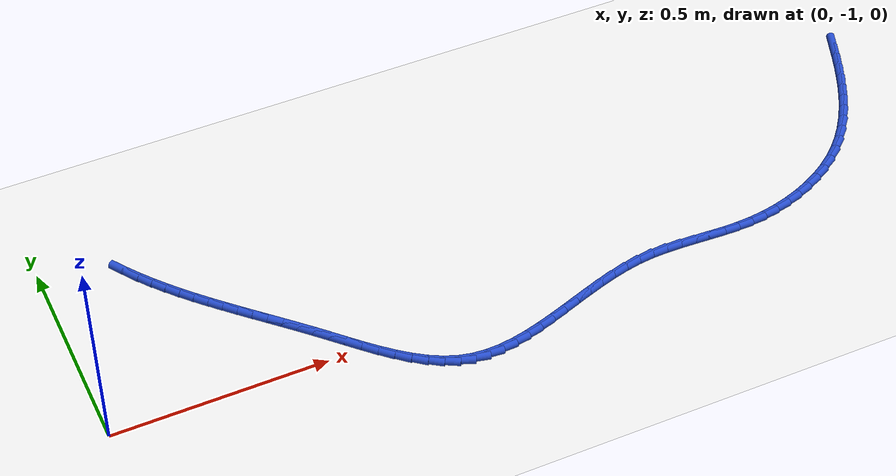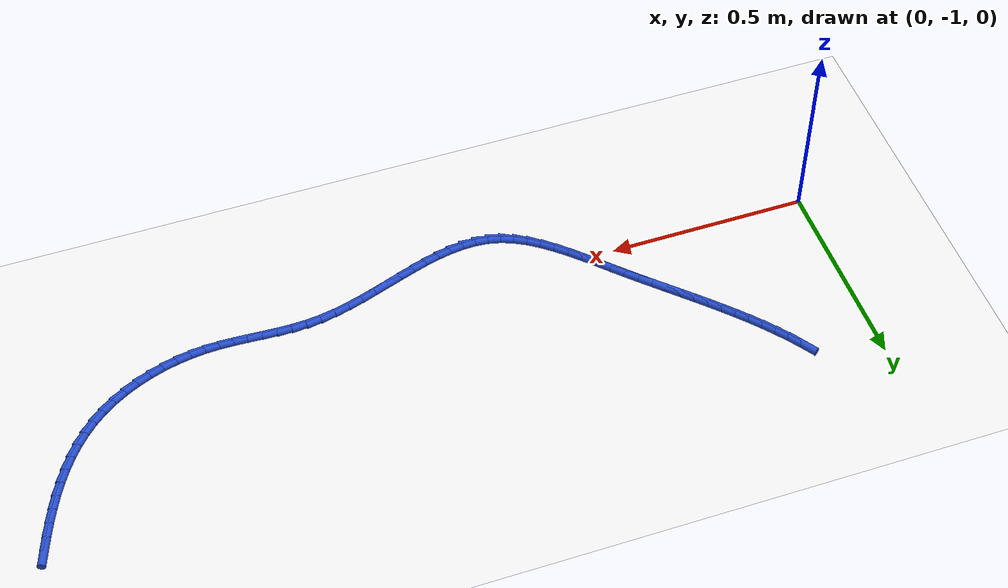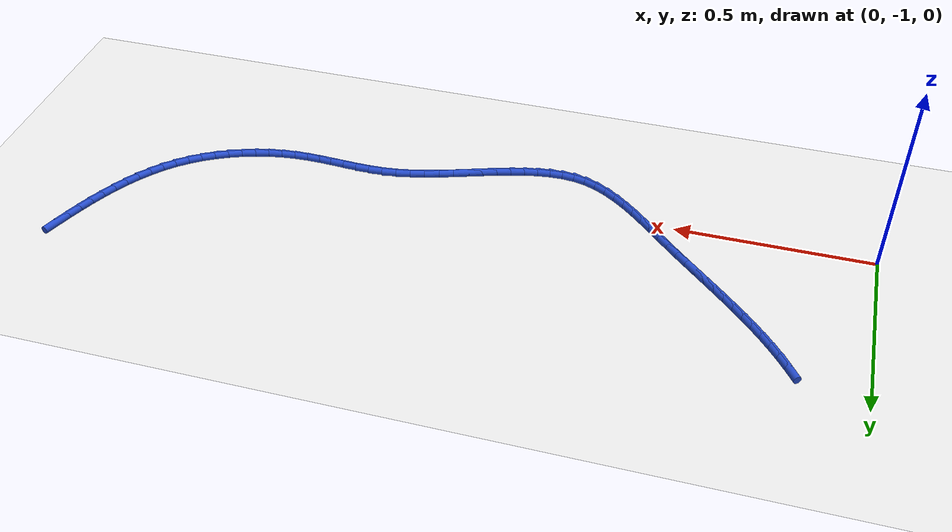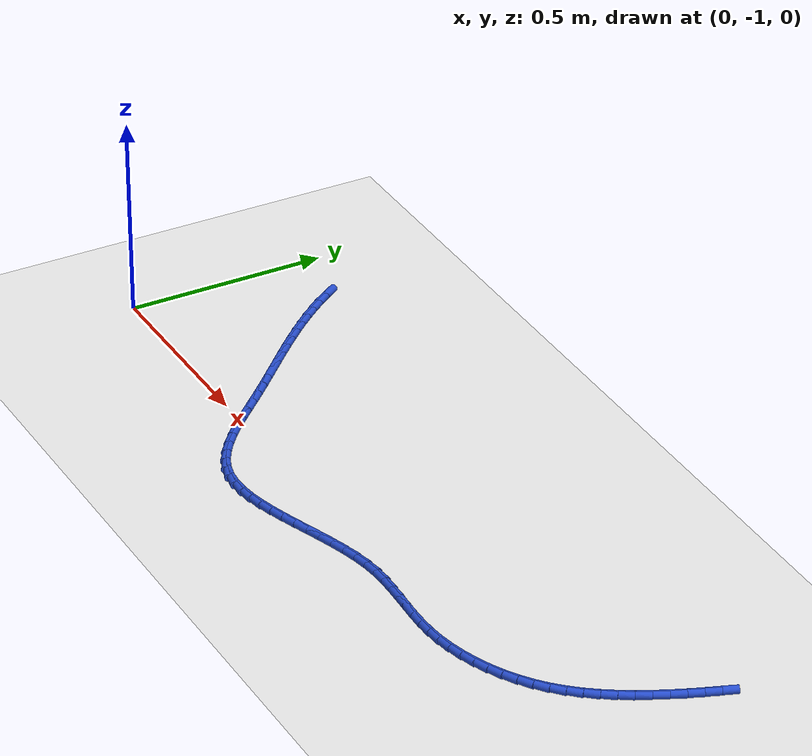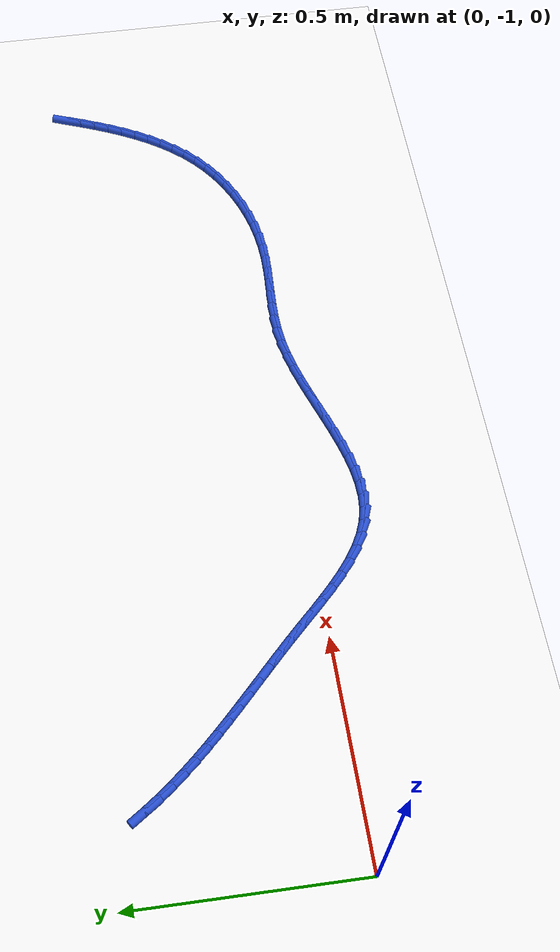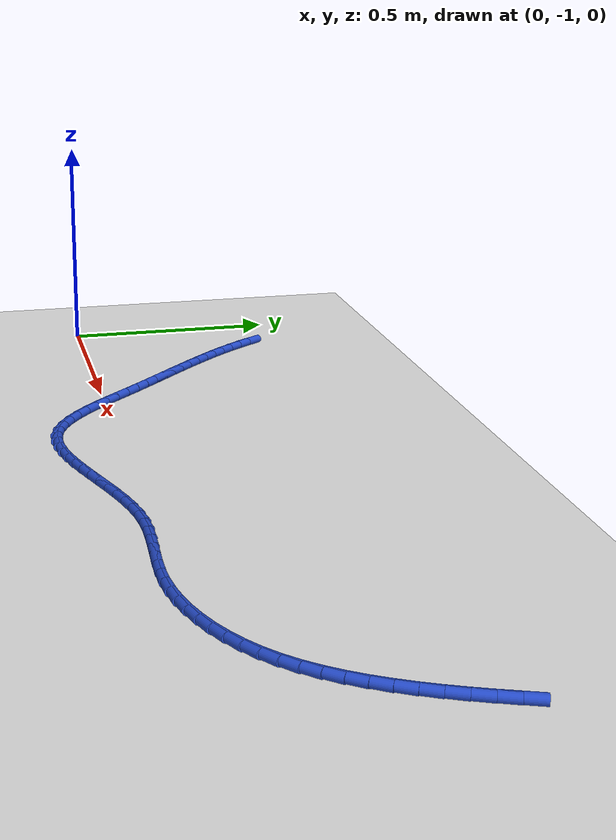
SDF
<sdf version="1.6">
 <world name="default">
  <model name="ground_plane">
   <static>1</static>
   <link name="link">
    <collision name="collision">
     <geometry><plane><normal>0 0 1</normal><size>100 100</size></plane></geometry>
     <surface><friction><ode><mu>100</mu><mu2>50</mu2></ode></friction></surface>
    </collision>
    <visual name="visual">
     <cast_shadows>0</cast_shadows>
     <geometry><plane><normal>0 0 1</normal><size>100 100</size></plane></geometry>
     <material>
      <script><uri>file://media/materials/scripts/gazebo.material</uri><name>Gazebo/WhiteGlow</name></script>
     </material>
    </visual>
   </link>
  </model>
  <model name="line">
   <link name="link_110">
    <pose>2.008956228428397 -0.5895263642792599 0.01 0 1.57 1.2124512911762035</pose>
    <collision name="collision">
     <geometry><cylinder><radius>0.01</radius><length>0.08</length></cylinder></geometry>
    </collision>
    <visual name="visual">
     <material>
      <script><name>Gazebo/Blue</name><uri>file://media/materials/scripts/gazebo.material</uri></script>
     </material>
     <geometry><cylinder><radius>0.01</radius><length>0.08</length></cylinder></geometry>
    </visual>
   </link>
   <link name="link_111">
    <pose>1.995990981477229 -0.6241451678431958 0.01 0 1.57 1.1910156846090714</pose>
    <collision name="collision">
     <geometry><cylinder><radius>0.01</radius><length>0.08</length></cylinder></geometry>
    </collision>
    <visual name="visual">
     <material>
      <script><name>Gazebo/Blue</name><uri>file://media/materials/scripts/gazebo.material</uri></script>
     </material>
     <geometry><cylinder><radius>0.01</radius><length>0.08</length></cylinder></geometry>
    </visual>
   </link>
   <link name="link_112">
    <pose>1.9822794995778001 -0.6584961477705011 0.01 0 1.57 1.163613915062704</pose>
    <collision name="collision">
     <geometry><cylinder><radius>0.01</radius><length>0.08</length></cylinder></geometry>
    </collision>
    <visual name="visual">
     <material>
      <script><name>Gazebo/Blue</name><uri>file://media/materials/scripts/gazebo.material</uri></script>
     </material>
     <geometry><cylinder><radius>0.01</radius><length>0.08</length></cylinder></geometry>
    </visual>
   </link>
   <link name="link_113">
    <pose>1.9676663170922986 -0.6923790030292803 0.01 0 1.57 1.1299675361653945</pose>
    <collision name="collision">
     <geometry><cylinder><radius>0.01</radius><length>0.08</length></cylinder></geometry>
    </collision>
    <visual name="visual">
     <material>
      <script><name>Gazebo/Blue</name><uri>file://media/materials/scripts/gazebo.material</uri></script>
     </material>
     <geometry><cylinder><radius>0.01</radius><length>0.08</length></cylinder></geometry>
    </visual>
   </link>
   <link name="link_114">
    <pose>1.951995968382915 -0.7255934325876364 0.01 0 1.57 1.0897398851819553</pose>
    <collision name="collision">
     <geometry><cylinder><radius>0.01</radius><length>0.08</length></cylinder></geometry>
    </collision>
    <visual name="visual">
     <material>
      <script><name>Gazebo/Blue</name><uri>file://media/materials/scripts/gazebo.material</uri></script>
     </material>
     <geometry><cylinder><radius>0.01</radius><length>0.08</length></cylinder></geometry>
    </visual>
   </link>
   <link name="link_115">
    <pose>1.9351129878118374 -0.7579391354136725 0.01 0 1.57 1.0425703880089827</pose>
    <collision name="collision">
     <geometry><cylinder><radius>0.01</radius><length>0.08</length></cylinder></geometry>
    </collision>
    <visual name="visual">
     <material>
      <script><name>Gazebo/Blue</name><uri>file://media/materials/scripts/gazebo.material</uri></script>
     </material>
     <geometry><cylinder><radius>0.01</radius><length>0.08</length></cylinder></geometry>
    </visual>
   </link>
   <link name="link_116">
    <pose>1.9168619097412556 -0.7892158104754918 0.01 0 1.57 0.988124859467328</pose>
    <collision name="collision">
     <geometry><cylinder><radius>0.01</radius><length>0.08</length></cylinder></geometry>
    </collision>
    <visual name="visual">
     <material>
      <script><name>Gazebo/Blue</name><uri>file://media/materials/scripts/gazebo.material</uri></script>
     </material>
     <geometry><cylinder><radius>0.01</radius><length>0.08</length></cylinder></geometry>
    </visual>
   </link>
   <link name="link_117">
    <pose>1.8970872685333586 -0.8192231567411978 0.01 0 1.57 0.9261662705150793</pose>
    <collision name="collision">
     <geometry><cylinder><radius>0.01</radius><length>0.08</length></cylinder></geometry>
    </collision>
    <visual name="visual">
     <material>
      <script><name>Gazebo/Blue</name><uri>file://media/materials/scripts/gazebo.material</uri></script>
     </material>
     <geometry><cylinder><radius>0.01</radius><length>0.08</length></cylinder></geometry>
    </visual>
   </link>
   <link name="link_118">
    <pose>1.8756335985503356 -0.8477608731788931 0.01 0 1.57 0.8566471759363876</pose>
    <collision name="collision">
     <geometry><cylinder><radius>0.01</radius><length>0.08</length></cylinder></geometry>
    </collision>
    <visual name="visual">
     <material>
      <script><name>Gazebo/Blue</name><uri>file://media/materials/scripts/gazebo.material</uri></script>
     </material>
     <geometry><cylinder><radius>0.01</radius><length>0.08</length></cylinder></geometry>
    </visual>
   </link>
   <link name="link_119">
    <pose>1.8523454341543746 -0.874628658756682 0.01 0 1.57 0.7798175753569531</pose>
    <collision name="collision">
     <geometry><cylinder><radius>0.01</radius><length>0.08</length></cylinder></geometry>
    </collision>
    <visual name="visual">
     <material>
      <script><name>Gazebo/Blue</name><uri>file://media/materials/scripts/gazebo.material</uri></script>
     </material>
     <geometry><cylinder><radius>0.01</radius><length>0.08</length></cylinder></geometry>
    </visual>
   </link>
   <link name="link_120">
    <pose>1.8270673097076662 -0.8996262124426677 0.01 0 1.57 0.6966102429553703</pose>
    <collision name="collision">
     <geometry><cylinder><radius>0.01</radius><length>0.08</length></cylinder></geometry>
    </collision>
    <visual name="visual">
     <material>
      <script><name>Gazebo/Blue</name><uri>file://media/materials/scripts/gazebo.material</uri></script>
     </material>
     <geometry><cylinder><radius>0.01</radius><length>0.08</length></cylinder></geometry>
    </visual>
   </link>
   <link name="link_121">
    <pose>1.7996548436356807 -0.9225570209223264 0.01 0 1.57 0.613248061302443</pose>
    <collision name="collision">
     <geometry><cylinder><radius>0.01</radius><length>0.08</length></cylinder></geometry>
    </collision>
    <visual name="visual">
     <material>
      <script><name>Gazebo/Blue</name><uri>file://media/materials/scripts/gazebo.material</uri></script>
     </material>
     <geometry><cylinder><radius>0.01</radius><length>0.08</length></cylinder></geometry>
    </visual>
   </link>
   <link name="link_122">
    <pose>1.7701817885669522 -0.9432991131035716 0.01 0 1.57 0.5343597861140099</pose>
    <collision name="collision">
     <geometry><cylinder><radius>0.01</radius><length>0.08</length></cylinder></geometry>
    </collision>
    <visual name="visual">
     <material>
      <script><name>Gazebo/Blue</name><uri>file://media/materials/scripts/gazebo.material</uri></script>
     </material>
     <geometry><cylinder><radius>0.01</radius><length>0.08</length></cylinder></geometry>
    </visual>
   </link>
   <link name="link_123">
    <pose>1.7389213567557225 -0.9617986785201055 0.01 0 1.57 0.4592950222114369</pose>
    <collision name="collision">
     <geometry><cylinder><radius>0.01</radius><length>0.08</length></cylinder></geometry>
    </collision>
    <visual name="visual">
     <material>
      <script><name>Gazebo/Blue</name><uri>file://media/materials/scripts/gazebo.material</uri></script>
     </material>
     <geometry><cylinder><radius>0.01</radius><length>0.08</length></cylinder></geometry>
    </visual>
   </link>
   <link name="link_124">
    <pose>1.7061541002232516 -0.9780044148980092 0.01 0 1.57 0.3871630367196122</pose>
    <collision name="collision">
     <geometry><cylinder><radius>0.01</radius><length>0.08</length></cylinder></geometry>
    </collision>
    <visual name="visual">
     <material>
      <script><name>Gazebo/Blue</name><uri>file://media/materials/scripts/gazebo.material</uri></script>
     </material>
     <geometry><cylinder><radius>0.01</radius><length>0.08</length></cylinder></geometry>
    </visual>
   </link>
   <link name="link_125">
    <pose>1.6721605709908003 -0.991865019963363 0.01 0 1.57 0.31704877926278985</pose>
    <collision name="collision">
     <geometry><cylinder><radius>0.01</radius><length>0.08</length></cylinder></geometry>
    </collision>
    <visual name="visual">
     <material>
      <script><name>Gazebo/Blue</name><uri>file://media/materials/scripts/gazebo.material</uri></script>
     </material>
     <geometry><cylinder><radius>0.01</radius><length>0.08</length></cylinder></geometry>
    </visual>
   </link>
   <link name="link_126">
    <pose>1.6372213210796271 -1.0033291914422486 0.01 0 1.57 0.24802502090327064</pose>
    <collision name="collision">
     <geometry><cylinder><radius>0.01</radius><length>0.08</length></cylinder></geometry>
    </collision>
    <visual name="visual">
     <material>
      <script><name>Gazebo/Blue</name><uri>file://media/materials/scripts/gazebo.material</uri></script>
     </material>
     <geometry><cylinder><radius>0.01</radius><length>0.08</length></cylinder></geometry>
    </visual>
   </link>
   <link name="link_127">
    <pose>1.6016169025109939 -1.0123456270607472 0.01 0 1.57 0.17915237948645973</pose>
    <collision name="collision">
     <geometry><cylinder><radius>0.01</radius><length>0.08</length></cylinder></geometry>
    </collision>
    <visual name="visual">
     <material>
      <script><name>Gazebo/Blue</name><uri>file://media/materials/scripts/gazebo.material</uri></script>
     </material>
     <geometry><cylinder><radius>0.01</radius><length>0.08</length></cylinder></geometry>
    </visual>
   </link>
   <link name="link_128">
    <pose>1.56562786730616 -1.0188630245449395 0.01 0 1.57 0.10947236690909026</pose>
    <collision name="collision">
     <geometry><cylinder><radius>0.01</radius><length>0.08</length></cylinder></geometry>
    </collision>
    <visual name="visual">
     <material>
      <script><name>Gazebo/Blue</name><uri>file://media/materials/scripts/gazebo.material</uri></script>
     </material>
     <geometry><cylinder><radius>0.01</radius><length>0.08</length></cylinder></geometry>
    </visual>
   </link>
   <link name="link_129">
    <pose>1.5295347674863866 -1.0228300816209066 0.01 0 1.57 0.04117425667526053</pose>
    <collision name="collision">
     <geometry><cylinder><radius>0.01</radius><length>0.08</length></cylinder></geometry>
    </collision>
    <visual name="visual">
     <material>
      <script><name>Gazebo/Blue</name><uri>file://media/materials/scripts/gazebo.material</uri></script>
     </material>
     <geometry><cylinder><radius>0.01</radius><length>0.08</length></cylinder></geometry>
    </visual>
   </link>
   <link name="link_130">
    <pose>1.493568566575516 -1.0243118006324976 0.01 0 1.57 -0.011460336425035309</pose>
    <collision name="collision">
     <geometry><cylinder><radius>0.01</radius><length>0.08</length></cylinder></geometry>
    </collision>
    <visual name="visual">
     <material>
      <script><name>Gazebo/Blue</name><uri>file://media/materials/scripts/gazebo.material</uri></script>
     </material>
     <geometry><cylinder><radius>0.01</radius><length>0.08</length></cylinder></geometry>
    </visual>
   </link>
   <link name="link_131">
    <pose>1.4577351335975302 -1.023901119455621 0.01 0 1.57 -0.04360998026562016</pose>
    <collision name="collision">
     <geometry><cylinder><radius>0.01</radius><length>0.08</length></cylinder></geometry>
    </collision>
    <visual name="visual">
     <material>
      <script><name>Gazebo/Blue</name><uri>file://media/materials/scripts/gazebo.material</uri></script>
     </material>
     <geometry><cylinder><radius>0.01</radius><length>0.08</length></cylinder></geometry>
    </visual>
   </link>
   <link name="link_132">
    <pose>1.4219765014645105 -1.0223406968688367 0.01 0 1.57 -0.05499195569354614</pose>
    <collision name="collision">
     <geometry><cylinder><radius>0.01</radius><length>0.08</length></cylinder></geometry>
    </collision>
    <visual name="visual">
     <material>
      <script><name>Gazebo/Blue</name><uri>file://media/materials/scripts/gazebo.material</uri></script>
     </material>
     <geometry><cylinder><radius>0.01</radius><length>0.08</length></cylinder></geometry>
    </visual>
   </link>
   <link name="link_133">
    <pose>1.38623469887479 -1.0203732015336056 0.01 0 1.57 -0.04557393155336304</pose>
    <collision name="collision">
     <geometry><cylinder><radius>0.01</radius><length>0.08</length></cylinder></geometry>
    </collision>
    <visual name="visual">
     <material>
      <script><name>Gazebo/Blue</name><uri>file://media/materials/scripts/gazebo.material</uri></script>
     </material>
     <geometry><cylinder><radius>0.01</radius><length>0.08</length></cylinder></geometry>
    </visual>
   </link>
   <link name="link_134">
    <pose>1.3504517545267023 -1.0187413021113891 0.01 0 1.57 -0.01542807075879986</pose>
    <collision name="collision">
     <geometry><cylinder><radius>0.01</radius><length>0.08</length></cylinder></geometry>
    </collision>
    <visual name="visual">
     <material>
      <script><name>Gazebo/Blue</name><uri>file://media/materials/scripts/gazebo.material</uri></script>
     </material>
     <geometry><cylinder><radius>0.01</radius><length>0.08</length></cylinder></geometry>
    </visual>
   </link>
   <link name="link_135">
    <pose>1.3145696971185825 -1.018187667263649 0.01 0 1.57 0.03515001626800734</pose>
    <collision name="collision">
     <geometry><cylinder><radius>0.01</radius><length>0.08</length></cylinder></geometry>
    </collision>
    <visual name="visual">
     <material>
      <script><name>Gazebo/Blue</name><uri>file://media/materials/scripts/gazebo.material</uri></script>
     </material>
     <geometry><cylinder><radius>0.01</radius><length>0.08</length></cylinder></geometry>
    </visual>
   </link>
   <link name="link_136">
    <pose>1.2785305553487631 -1.0194549656518457 0.01 0 1.57 0.10509399980699259</pose>
    <collision name="collision">
     <geometry><cylinder><radius>0.01</radius><length>0.08</length></cylinder></geometry>
    </collision>
    <visual name="visual">
     <material>
      <script><name>Gazebo/Blue</name><uri>file://media/materials/scripts/gazebo.material</uri></script>
     </material>
     <geometry><cylinder><radius>0.01</radius><length>0.08</length></cylinder></geometry>
    </visual>
   </link>
   <link name="link_137">
    <pose>1.2422771140812525 -1.023279073950608 0.01 0 1.57 0.1802870361433598</pose>
    <collision name="collision">
     <geometry><cylinder><radius>0.01</radius><length>0.08</length></cylinder></geometry>
    </collision>
    <visual name="visual">
     <material>
      <script><name>Gazebo/Blue</name><uri>file://media/materials/scripts/gazebo.material</uri></script>
     </material>
     <geometry><cylinder><radius>0.01</radius><length>0.08</length></cylinder></geometry>
    </visual>
   </link>
   <link name="link_138">
    <pose>1.205804378711806 -1.0299268166459676 0.01 0 1.57 0.24035698565938976</pose>
    <collision name="collision">
     <geometry><cylinder><radius>0.01</radius><length>0.08</length></cylinder></geometry>
    </collision>
    <visual name="visual">
     <material>
      <script><name>Gazebo/Blue</name><uri>file://media/materials/scripts/gazebo.material</uri></script>
     </material>
     <geometry><cylinder><radius>0.01</radius><length>0.08</length></cylinder></geometry>
    </visual>
   </link>
   <link name="link_139">
    <pose>1.1691925024980954 -1.0389002081071872 0.01 0 1.57 0.2847304505585501</pose>
    <collision name="collision">
     <geometry><cylinder><radius>0.01</radius><length>0.08</length></cylinder></geometry>
    </collision>
    <visual name="visual">
     <material>
      <script><name>Gazebo/Blue</name><uri>file://media/materials/scripts/gazebo.material</uri></script>
     </material>
     <geometry><cylinder><radius>0.01</radius><length>0.08</length></cylinder></geometry>
    </visual>
   </link>
   <link name="link_140">
    <pose>1.1325294778943016 -1.04963084993371 0.01 0 1.57 0.3146265931267029</pose>
    <collision name="collision">
     <geometry><cylinder><radius>0.01</radius><length>0.08</length></cylinder></geometry>
    </collision>
    <visual name="visual">
     <material>
      <script><name>Gazebo/Blue</name><uri>file://media/materials/scripts/gazebo.material</uri></script>
     </material>
     <geometry><cylinder><radius>0.01</radius><length>0.08</length></cylinder></geometry>
    </visual>
   </link>
   <link name="link_141">
    <pose>1.0959032973546103 -1.0615503437249791 0.01 0 1.57 0.33091501082393326</pose>
    <collision name="collision">
     <geometry><cylinder><radius>0.01</radius><length>0.08</length></cylinder></geometry>
    </collision>
    <visual name="visual">
     <material>
      <script><name>Gazebo/Blue</name><uri>file://media/materials/scripts/gazebo.material</uri></script>
     </material>
     <geometry><cylinder><radius>0.01</radius><length>0.08</length></cylinder></geometry>
    </visual>
   </link>
   <link name="link_142">
    <pose>1.059401953333206 -1.0740902910804393 0.01 0 1.57 0.3339969579693834</pose>
    <collision name="collision">
     <geometry><cylinder><radius>0.01</radius><length>0.08</length></cylinder></geometry>
    </collision>
    <visual name="visual">
     <material>
      <script><name>Gazebo/Blue</name><uri>file://media/materials/scripts/gazebo.material</uri></script>
     </material>
     <geometry><cylinder><radius>0.01</radius><length>0.08</length></cylinder></geometry>
    </visual>
   </link>
   <link name="link_143">
    <pose>1.023113438284272 -1.0866822935995333 0.01 0 1.57 0.3237439434225442</pose>
    <collision name="collision">
     <geometry><cylinder><radius>0.01</radius><length>0.08</length></cylinder></geometry>
    </collision>
    <visual name="visual">
     <material>
      <script><name>Gazebo/Blue</name><uri>file://media/materials/scripts/gazebo.material</uri></script>
     </material>
     <geometry><cylinder><radius>0.01</radius><length>0.08</length></cylinder></geometry>
    </visual>
   </link>
   <link name="link_144">
    <pose>0.9871257446619927 -1.098757952881705 0.01 0 1.57 0.29945879566671074</pose>
    <collision name="collision">
     <geometry><cylinder><radius>0.01</radius><length>0.08</length></cylinder></geometry>
    </collision>
    <visual name="visual">
     <material>
      <script><name>Gazebo/Blue</name><uri>file://media/materials/scripts/gazebo.material</uri></script>
     </material>
     <geometry><cylinder><radius>0.01</radius><length>0.08</length></cylinder></geometry>
    </visual>
   </link>
   <link name="link_145">
    <pose>0.9515268649205526 -1.1097488705263976 0.01 0 1.57 0.2598550632447586</pose>
    <collision name="collision">
     <geometry><cylinder><radius>0.01</radius><length>0.08</length></cylinder></geometry>
    </collision>
    <visual name="visual">
     <material>
      <script><name>Gazebo/Blue</name><uri>file://media/materials/scripts/gazebo.material</uri></script>
     </material>
     <geometry><cylinder><radius>0.01</radius><length>0.08</length></cylinder></geometry>
    </visual>
   </link>
   <link name="link_146">
    <pose>0.9164047915141345 -1.1190866481330548 0.01 0 1.57 0.20308702899736059</pose>
    <collision name="collision">
     <geometry><cylinder><radius>0.01</radius><length>0.08</length></cylinder></geometry>
    </collision>
    <visual name="visual">
     <material>
      <script><name>Gazebo/Blue</name><uri>file://media/materials/scripts/gazebo.material</uri></script>
     </material>
     <geometry><cylinder><radius>0.01</radius><length>0.08</length></cylinder></geometry>
    </visual>
   </link>
   <link name="link_147">
    <pose>0.8818475168969231 -1.1262028873011207 0.01 0 1.57 0.12691678927701705</pose>
    <collision name="collision">
     <geometry><cylinder><radius>0.01</radius><length>0.08</length></cylinder></geometry>
    </collision>
    <visual name="visual">
     <material>
      <script><name>Gazebo/Blue</name><uri>file://media/materials/scripts/gazebo.material</uri></script>
     </material>
     <geometry><cylinder><radius>0.01</radius><length>0.08</length></cylinder></geometry>
    </visual>
   </link>
   <link name="link_148">
    <pose>0.8479430335231027 -1.1305291896300387 0.01 0 1.57 0.029179264210549845</pose>
    <collision name="collision">
     <geometry><cylinder><radius>0.01</radius><length>0.08</length></cylinder></geometry>
    </collision>
    <visual name="visual">
     <material>
      <script><name>Gazebo/Blue</name><uri>file://media/materials/scripts/gazebo.material</uri></script>
     </material>
     <geometry><cylinder><radius>0.01</radius><length>0.08</length></cylinder></geometry>
    </visual>
   </link>
   <link name="link_149">
    <pose>0.8147793338468567 -1.1314971567192513 0.01 0 1.57 -0.0912496339867126</pose>
    <collision name="collision">
     <geometry><cylinder><radius>0.01</radius><length>0.08</length></cylinder></geometry>
    </collision>
    <visual name="visual">
     <material>
      <script><name>Gazebo/Blue</name><uri>file://media/materials/scripts/gazebo.material</uri></script>
     </material>
     <geometry><cylinder><radius>0.01</radius><length>0.08</length></cylinder></geometry>
    </visual>
   </link>
   <link name="link_150">
    <pose>0.78244441032237 -1.1285383901682036 0.01 0 1.57 -0.23290249860196294</pose>
    <collision name="collision">
     <geometry><cylinder><radius>0.01</radius><length>0.08</length></cylinder></geometry>
    </collision>
    <visual name="visual">
     <material>
      <script><name>Gazebo/Blue</name><uri>file://media/materials/scripts/gazebo.material</uri></script>
     </material>
     <geometry><cylinder><radius>0.01</radius><length>0.08</length></cylinder></geometry>
    </visual>
   </link>
   <link name="link_151">
    <pose>0.7510260572883595 -1.1210857345226086 0.01 0 1.57 -0.3803265095428841</pose>
    <collision name="collision">
     <geometry><cylinder><radius>0.01</radius><length>0.08</length></cylinder></geometry>
    </collision>
    <visual name="visual">
     <material>
      <script><name>Gazebo/Blue</name><uri>file://media/materials/scripts/gazebo.material</uri></script>
     </material>
     <geometry><cylinder><radius>0.01</radius><length>0.08</length></cylinder></geometry>
    </visual>
   </link>
   <link name="link_152">
    <pose>0.7205589570978304 -1.108905250839324 0.01 0 1.57 -0.5048671527893339</pose>
    <collision name="collision">
     <geometry><cylinder><radius>0.01</radius><length>0.08</length></cylinder></geometry>
    </collision>
    <visual name="visual">
     <material>
      <script><name>Gazebo/Blue</name><uri>file://media/materials/scripts/gazebo.material</uri></script>
     </material>
     <geometry><cylinder><radius>0.01</radius><length>0.08</length></cylinder></geometry>
    </visual>
   </link>
   <link name="link_153">
    <pose>0.6909533056093771 -1.0925440094859 0.01 0 1.57 -0.6034055983778368</pose>
    <collision name="collision">
     <geometry><cylinder><radius>0.01</radius><length>0.08</length></cylinder></geometry>
    </collision>
    <visual name="visual">
     <material>
      <script><name>Gazebo/Blue</name><uri>file://media/materials/scripts/gazebo.material</uri></script>
     </material>
     <geometry><cylinder><radius>0.01</radius><length>0.08</length></cylinder></geometry>
    </visual>
   </link>
   <link name="link_154">
    <pose>0.6621014861670744 -1.0726608338337287 0.01 0 1.57 -0.6786588752078622</pose>
    <collision name="collision">
     <geometry><cylinder><radius>0.01</radius><length>0.08</length></cylinder></geometry>
    </collision>
    <visual name="visual">
     <material>
      <script><name>Gazebo/Blue</name><uri>file://media/materials/scripts/gazebo.material</uri></script>
     </material>
     <geometry><cylinder><radius>0.01</radius><length>0.08</length></cylinder></geometry>
    </visual>
   </link>
   <link name="link_155">
    <pose>0.6338958821149975 -1.0499145472542006 0.01 0 1.57 -0.7338180308210664</pose>
    <collision name="collision">
     <geometry><cylinder><radius>0.01</radius><length>0.08</length></cylinder></geometry>
    </collision>
    <visual name="visual">
     <material>
      <script><name>Gazebo/Blue</name><uri>file://media/materials/scripts/gazebo.material</uri></script>
     </material>
     <geometry><cylinder><radius>0.01</radius><length>0.08</length></cylinder></geometry>
    </visual>
   </link>
   <link name="link_156">
    <pose>0.6062288767972206 -1.0249639731187077 0.01 0 1.57 -0.7716272765002293</pose>
    <collision name="collision">
     <geometry><cylinder><radius>0.01</radius><length>0.08</length></cylinder></geometry>
    </collision>
    <visual name="visual">
     <material>
      <script><name>Gazebo/Blue</name><uri>file://media/materials/scripts/gazebo.material</uri></script>
     </material>
     <geometry><cylinder><radius>0.01</radius><length>0.08</length></cylinder></geometry>
    </visual>
   </link>
   <link name="link_157">
    <pose>0.578992853557818 -0.9984679347986402 0.01 0 1.57 -0.7940547000761413</pose>
    <collision name="collision">
     <geometry><cylinder><radius>0.01</radius><length>0.08</length></cylinder></geometry>
    </collision>
    <visual name="visual">
     <material>
      <script><name>Gazebo/Blue</name><uri>file://media/materials/scripts/gazebo.material</uri></script>
     </material>
     <geometry><cylinder><radius>0.01</radius><length>0.08</length></cylinder></geometry>
    </visual>
   </link>
   <link name="link_158">
    <pose>0.5520801957408649 -0.9710852556653895 0.01 0 1.57 -0.8022190987340637</pose>
    <collision name="collision">
     <geometry><cylinder><radius>0.01</radius><length>0.08</length></cylinder></geometry>
    </collision>
    <visual name="visual">
     <material>
      <script><name>Gazebo/Blue</name><uri>file://media/materials/scripts/gazebo.material</uri></script>
     </material>
     <geometry><cylinder><radius>0.01</radius><length>0.08</length></cylinder></geometry>
    </visual>
   </link>
   <link name="link_159">
    <pose>0.5253832866904357 -0.9434747590903476 0.01 0 1.57 -0.7967326888268823</pose>
    <collision name="collision">
     <geometry><cylinder><radius>0.01</radius><length>0.08</length></cylinder></geometry>
    </collision>
    <visual name="visual">
     <material>
      <script><name>Gazebo/Blue</name><uri>file://media/materials/scripts/gazebo.material</uri></script>
     </material>
     <geometry><cylinder><radius>0.01</radius><length>0.08</length></cylinder></geometry>
    </visual>
   </link>
   <link name="link_160">
    <pose>0.4987977925894629 -0.9162796613983075 0.01 0 1.57 -0.7856728537069125</pose>
    <collision name="collision">
     <geometry><cylinder><radius>0.01</radius><length>0.08</length></cylinder></geometry>
    </collision>
    <visual name="visual">
     <material>
      <script><name>Gazebo/Blue</name><uri>file://media/materials/scripts/gazebo.material</uri></script>
     </material>
     <geometry><cylinder><radius>0.01</radius><length>0.08</length></cylinder></geometry>
    </visual>
   </link>
   <link name="link_161">
    <pose>0.47229871263413575 -0.8897660193616046 0.01 0 1.57 -0.7777044993543745</pose>
    <collision name="collision">
     <geometry><cylinder><radius>0.01</radius><length>0.08</length></cylinder></geometry>
    </collision>
    <visual name="visual">
     <material>
      <script><name>Gazebo/Blue</name><uri>file://media/materials/scripts/gazebo.material</uri></script>
     </material>
     <geometry><cylinder><radius>0.01</radius><length>0.08</length></cylinder></geometry>
    </visual>
   </link>
   <link name="link_162">
    <pose>0.44594256567617857 -0.863812334615867 0.01 0 1.57 -0.7734019945435164</pose>
    <collision name="collision">
     <geometry><cylinder><radius>0.01</radius><length>0.08</length></cylinder></geometry>
    </collision>
    <visual name="visual">
     <material>
      <script><name>Gazebo/Blue</name><uri>file://media/materials/scripts/gazebo.material</uri></script>
     </material>
     <geometry><cylinder><radius>0.01</radius><length>0.08</length></cylinder></geometry>
    </visual>
   </link>
   <link name="link_163">
    <pose>0.41978959083598366 -0.8382794221514219 0.01 0 1.57 -0.7729188089700381</pose>
    <collision name="collision">
     <geometry><cylinder><radius>0.01</radius><length>0.08</length></cylinder></geometry>
    </collision>
    <visual name="visual">
     <material>
      <script><name>Gazebo/Blue</name><uri>file://media/materials/scripts/gazebo.material</uri></script>
     </material>
     <geometry><cylinder><radius>0.01</radius><length>0.08</length></cylinder></geometry>
    </visual>
   </link>
   <link name="link_164">
    <pose>0.39390002723394324 -0.8130280969585972 0.01 0 1.57 -0.7763803162897708</pose>
    <collision name="collision">
     <geometry><cylinder><radius>0.01</radius><length>0.08</length></cylinder></geometry>
    </collision>
    <visual name="visual">
     <material>
      <script><name>Gazebo/Blue</name><uri>file://media/materials/scripts/gazebo.material</uri></script>
     </material>
     <geometry><cylinder><radius>0.01</radius><length>0.08</length></cylinder></geometry>
    </visual>
   </link>
   <link name="link_165">
    <pose>0.36833411399045 -0.7879191740277209 0.01 0 1.57 -0.7838805361709418</pose>
    <collision name="collision">
     <geometry><cylinder><radius>0.01</radius><length>0.08</length></cylinder></geometry>
    </collision>
    <visual name="visual">
     <material>
      <script><name>Gazebo/Blue</name><uri>file://media/materials/scripts/gazebo.material</uri></script>
     </material>
     <geometry><cylinder><radius>0.01</radius><length>0.08</length></cylinder></geometry>
    </visual>
   </link>
   <link name="link_166">
    <pose>0.34315209022589654 -0.7628134683491213 0.01 0 1.57 -0.7954775063092764</pose>
    <collision name="collision">
     <geometry><cylinder><radius>0.01</radius><length>0.08</length></cylinder></geometry>
    </collision>
    <visual name="visual">
     <material>
      <script><name>Gazebo/Blue</name><uri>file://media/materials/scripts/gazebo.material</uri></script>
     </material>
     <geometry><cylinder><radius>0.01</radius><length>0.08</length></cylinder></geometry>
    </visual>
   </link>
   <link name="link_167">
    <pose>0.3184141950606746 -0.7375717949131259 0.01 0 1.57 -0.8111872111975823</pose>
    <collision name="collision">
     <geometry><cylinder><radius>0.01</radius><length>0.08</length></cylinder></geometry>
    </collision>
    <visual name="visual">
     <material>
      <script><name>Gazebo/Blue</name><uri>file://media/materials/scripts/gazebo.material</uri></script>
     </material>
     <geometry><cylinder><radius>0.01</radius><length>0.08</length></cylinder></geometry>
    </visual>
   </link>
   <link name="link_168">
    <pose>0.2941806676151766 -0.712054968710062 0.01 0 1.57 -0.8309762441061437</pose>
    <collision name="collision">
     <geometry><cylinder><radius>0.01</radius><length>0.08</length></cylinder></geometry>
    </collision>
    <visual name="visual">
     <material>
      <script><name>Gazebo/Blue</name><uri>file://media/materials/scripts/gazebo.material</uri></script>
     </material>
     <geometry><cylinder><radius>0.01</radius><length>0.08</length></cylinder></geometry>
    </visual>
   </link>
   <link name="link_169">
    <pose>0.2705117470097953 -0.6861238047302584 0.01 0 1.57 -0.8547536971823041</pose>
    <collision name="collision">
     <geometry><cylinder><radius>0.01</radius><length>0.08</length></cylinder></geometry>
    </collision>
    <visual name="visual">
     <material>
      <script><name>Gazebo/Blue</name><uri>file://media/materials/scripts/gazebo.material</uri></script>
     </material>
     <geometry><cylinder><radius>0.01</radius><length>0.08</length></cylinder></geometry>
    </visual>
   </link>
   <link name="link_170">
    <pose>0.247467672364923 -0.6596391179640426 0.01 0 1.57 -0.8823631396626724</pose>
    <collision name="collision">
     <geometry><cylinder><radius>0.01</radius><length>0.08</length></cylinder></geometry>
    </collision>
    <visual name="visual">
     <material>
      <script><name>Gazebo/Blue</name><uri>file://media/materials/scripts/gazebo.material</uri></script>
     </material>
     <geometry><cylinder><radius>0.01</radius><length>0.08</length></cylinder></geometry>
    </visual>
   </link>
   <link name="link_171">
    <pose>0.225108682800952 -0.6324617234017426 0.01 0 1.57 -0.9135522957468939</pose>
    <collision name="collision">
     <geometry><cylinder><radius>0.01</radius><length>0.08</length></cylinder></geometry>
    </collision>
    <visual name="visual">
     <material>
      <script><name>Gazebo/Blue</name><uri>file://media/materials/scripts/gazebo.material</uri></script>
     </material>
     <geometry><cylinder><radius>0.01</radius><length>0.08</length></cylinder></geometry>
    </visual>
   </link>
   <link name="link_172">
    <pose>0.20349500276274252 -0.6044537840661818 0.01 0 1.57 -0.9467799181184109</pose>
    <collision name="collision">
     <geometry><cylinder><radius>0.01</radius><length>0.08</length></cylinder></geometry>
    </collision>
    <visual name="visual">
     <material>
      <script><name>Gazebo/Blue</name><uri>file://media/materials/scripts/gazebo.material</uri></script>
     </material>
     <geometry><cylinder><radius>0.01</radius><length>0.08</length></cylinder></geometry>
    </visual>
   </link>
   <link name="link_173">
    <pose>0.18268604471046354 -0.5755520484662041 0.01 0 1.57 -0.9801234632965226</pose>
    <collision name="collision">
     <geometry><cylinder><radius>0.01</radius><length>0.08</length></cylinder></geometry>
    </collision>
    <visual name="visual">
     <material>
      <script><name>Gazebo/Blue</name><uri>file://media/materials/scripts/gazebo.material</uri></script>
     </material>
     <geometry><cylinder><radius>0.01</radius><length>0.08</length></cylinder></geometry>
    </visual>
   </link>
  </model>
 </world>
</sdf>
